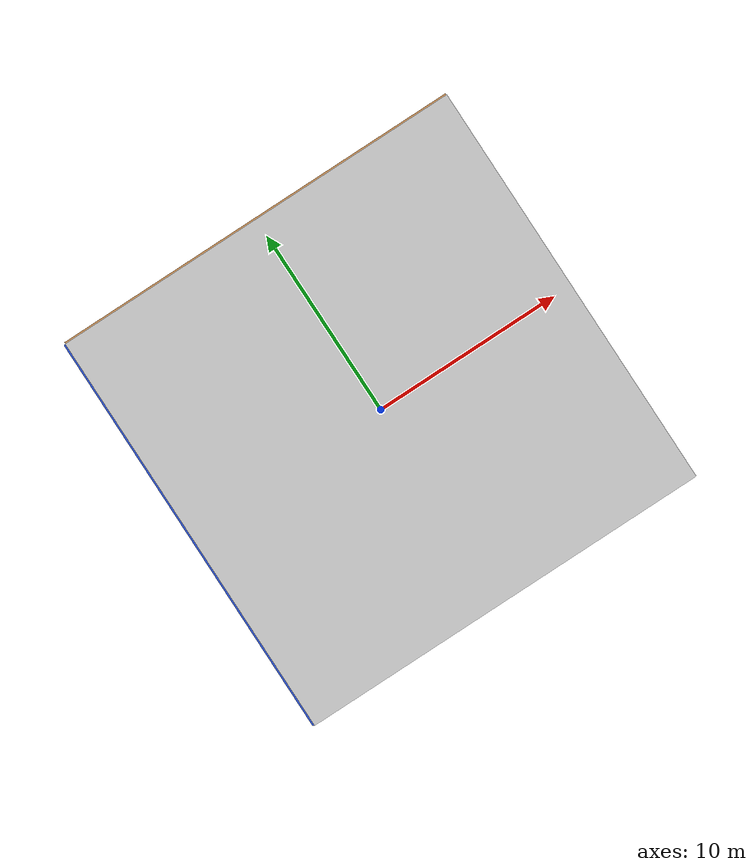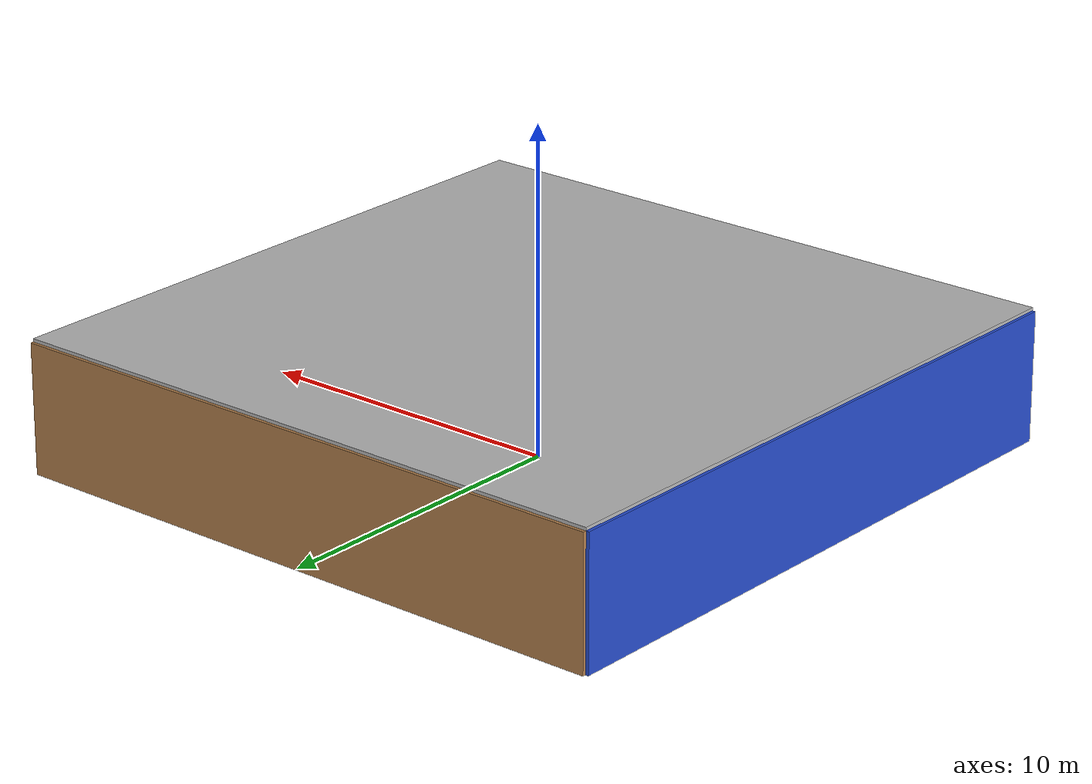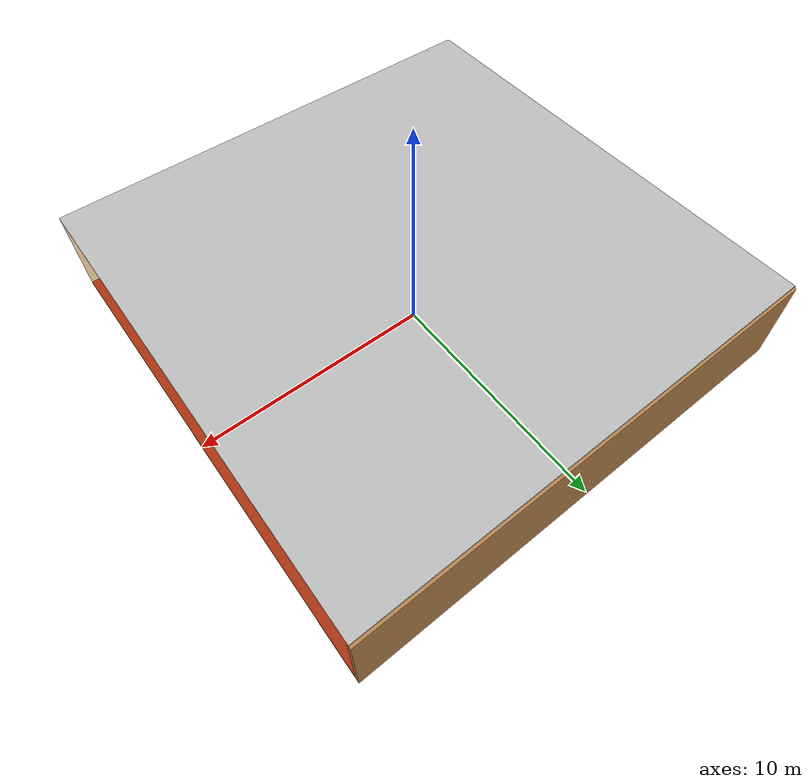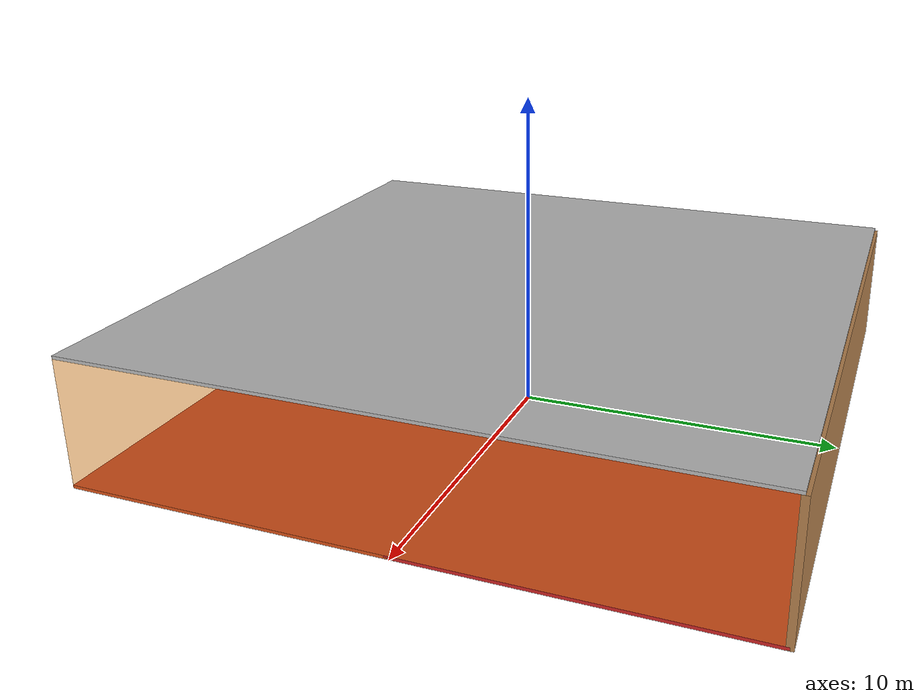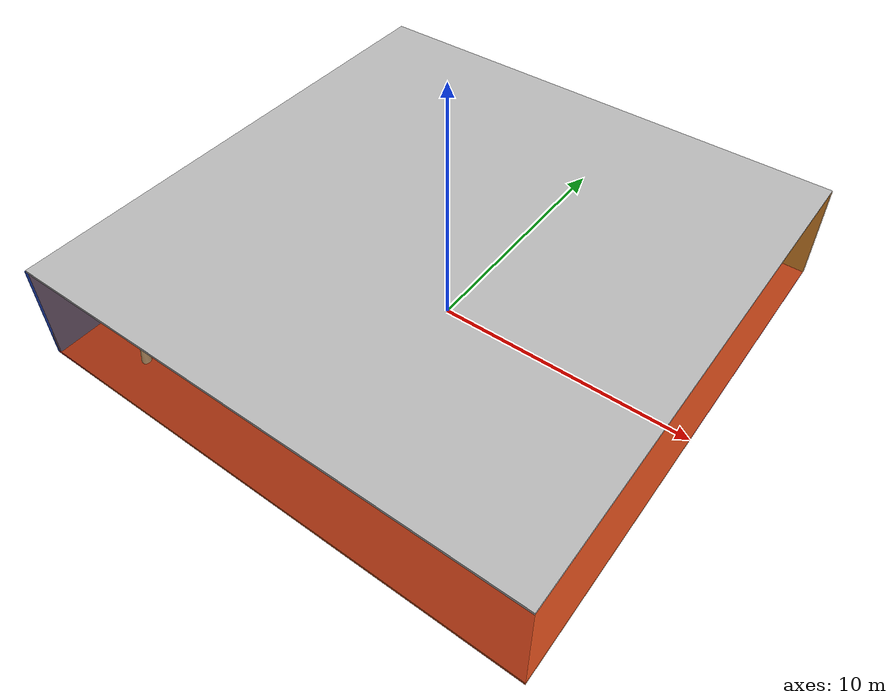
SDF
<sdf version="1.4">
 <world name="default">
  <physics type="ode">
   <max_step_size>0.001</max_step_size>
   <real_time_factor>1</real_time_factor>
   <real_time_update_rate>1000</real_time_update_rate>
   <gravity>0 0 -9.8</gravity>
  </physics>
  <scene><ambient>0.4 0.4 0.4 1</ambient><background>0.7 0.7 0.7 1</background><shadows>1</shadows></scene>
  <model name="Surrounding">
   <static>1</static>
   <link name="Ceiling">
    <collision name="Ceiling_Collision"><geometry><box><size>20 20 0.1</size></box></geometry></collision>
    <visual name="Ceiling_Visual">
     <geometry><box><size>20 20 0.1</size></box></geometry>
     <material>
      <script><uri>file://media/materials/scripts/gazebo.material</uri><name>Gazebo/PioneerBody</name></script>
     </material>
    </visual>
    <pose>0 0 4.05 0 0 0</pose>
   </link>
   <link name="Wall_South">
    <collision name="Wall_South_Collision">
     <geometry><box><size>20 0 4</size></box></geometry>
     <pose>0 0 2 0 -0 0</pose>
    </collision>
    <visual name="Wall_South_Visual">
     <pose>0 0 2 0 -0 0</pose>
     <geometry><box><size>20 0 4</size></box></geometry>
     <material>
      <script>
       <uri>file://media/materials/scripts/gazebo.material</uri>
       <name>Gazebo/OrangeTransparent</name>
      </script>
     </material>
    </visual>
    <velocity_decay><linear>0</linear><angular>0</angular></velocity_decay>
    <pose>0 -10 0 0 -0 0</pose>
   </link>
   <link name="Wall_East">
    <collision name="Wall_21_Collision">
     <geometry><box><size>20 0 4</size></box></geometry>
     <pose>0 0 2 0 -0 0</pose>
    </collision>
    <visual name="Wall_21_Visual">
     <pose>0 0 2 0 -0 0</pose>
     <geometry><box><size>20 0 4</size></box></geometry>
     <material>
      <script>
       <uri>file://media/materials/scripts/gazebo.material</uri>
       <name>Gazebo/OrangeTransparent</name>
      </script>
     </material>
    </visual>
    <velocity_decay><linear>0</linear><angular>0</angular></velocity_decay>
    <pose>10 0 0 0 -0 1.5708</pose>
   </link>
   <link name="Wall_North">
    <collision name="Wall_22_Collision">
     <geometry><box><size>20 0.2 4</size></box></geometry>
     <pose>0 0 2 0 -0 0</pose>
    </collision>
    <visual name="Wall_22_Visual">
     <pose>0 0 2 0 -0 0</pose>
     <geometry><box><size>20 0.2 4</size></box></geometry>
     <material>
      <script><uri>file://media/materials/scripts/gazebo.material</uri><name>Gazebo/WoodFloor</name></script>
     </material>
    </visual>
    <velocity_decay><linear>0</linear><angular>0</angular></velocity_decay>
    <pose>0 10 0 0 -0 0</pose>
   </link>
   <link name="Wall_West">
    <collision name="Wall_23_Collision">
     <geometry><box><size>20 0.2 4</size></box></geometry>
     <pose>0 0 2 0 -0 0</pose>
    </collision>
    <visual name="Wall_23_Visual">
     <pose>0 0 2 0 -0 0</pose>
     <geometry><box><size>20 0.2 4</size></box></geometry>
     <material>
      <script><uri>file://media/materials/scripts/gazebo.material</uri><name>Gazebo/BlueLaser</name></script>
     </material>
    </visual>
    <velocity_decay><linear>0</linear><angular>0</angular></velocity_decay>
    <pose>-10 0 0 0 0 -1.5708</pose>
   </link>
   <link name="Ground_link">
    <collision name="collision">
     <pose>0 0 .05 0 -0 0</pose>
     <geometry><box><size>20 20 0.1</size></box></geometry>
    </collision>
    <visual name="visual">
     <pose>0 0 .05 0 -0 0</pose>
     <geometry><box><size>20 20 0.1</size></box></geometry>
     <material>
      <script><uri>file://media/materials/scripts/gazebo.material</uri><name>Gazebo/RedGlow</name></script>
     </material>
    </visual>
   </link>
   <static>1</static>
  </model>
  <spherical_coordinates>
   <surface_model>EARTH_WGS84</surface_model>
   <latitude_deg>0</latitude_deg>
   <longitude_deg>0</longitude_deg>
   <elevation>0</elevation>
   <heading_deg>0</heading_deg>
  </spherical_coordinates>
  <light name="lightball_0" type="diffuse">
   <diffuse>0.8 0.8 0.8 1</diffuse>
   <specular>0.2 0.2 0.2 1</specular>
   <attenuation>
    <range>100</range>
    <constant>0.7</constant>
    <linear>0.01</linear>
    <quadratic>0.001</quadratic>
   </attenuation>
   <direction>-0.5 0.1 -0.9</direction>
   <pose>6.10915702983 2.01935232294 2.46883662608 0 0 0</pose>
  </light>
  <light name="lightball_1" type="diffuse">
   <diffuse>0.8 0.8 0.8 1</diffuse>
   <specular>0.2 0.2 0.2 1</specular>
   <attenuation>
    <range>100</range>
    <constant>0.7</constant>
    <linear>0.01</linear>
    <quadratic>0.001</quadratic>
   </attenuation>
   <direction>-0.5 0.1 -0.9</direction>
   <pose>6.66180167041 -9.64641684256 3.17376601558 0 0 0</pose>
  </light>
  <light name="lightball_2" type="diffuse">
   <diffuse>0.8 0.8 0.8 1</diffuse>
   <specular>0.2 0.2 0.2 1</specular>
   <attenuation>
    <range>100</range>
    <constant>0.7</constant>
    <linear>0.01</linear>
    <quadratic>0.001</quadratic>
   </attenuation>
   <direction>-0.5 0.1 -0.9</direction>
   <pose>2.12746370319 5.32142293227 1.35401084851 0 0 0</pose>
  </light>
  <light name="lightball_3" type="diffuse">
   <diffuse>0.8 0.8 0.8 1</diffuse>
   <specular>0.2 0.2 0.2 1</specular>
   <attenuation>
    <range>100</range>
    <constant>0.7</constant>
    <linear>0.01</linear>
    <quadratic>0.001</quadratic>
   </attenuation>
   <direction>-0.5 0.1 -0.9</direction>
   <pose>-8.89487889034 -4.64706830534 2.43619829512 0 0 0</pose>
  </light>
  <light name="lightball_4" type="diffuse">
   <diffuse>0.8 0.8 0.8 1</diffuse>
   <specular>0.2 0.2 0.2 1</specular>
   <attenuation>
    <range>100</range>
    <constant>0.7</constant>
    <linear>0.01</linear>
    <quadratic>0.001</quadratic>
   </attenuation>
   <direction>-0.5 0.1 -0.9</direction>
   <pose>-1.57363979905 4.11100973018 1.18603890972 0 0 0</pose>
  </light>
  <light name="lightball_5" type="diffuse">
   <diffuse>0.8 0.8 0.8 1</diffuse>
   <specular>0.2 0.2 0.2 1</specular>
   <attenuation>
    <range>100</range>
    <constant>0.7</constant>
    <linear>0.01</linear>
    <quadratic>0.001</quadratic>
   </attenuation>
   <direction>-0.5 0.1 -0.9</direction>
   <pose>-0.165953390232 1.43297328833 2.5678609616 0 0 0</pose>
  </light>
  <light name="lightball_6" type="diffuse">
   <diffuse>0.8 0.8 0.8 1</diffuse>
   <specular>0.2 0.2 0.2 1</specular>
   <attenuation>
    <range>100</range>
    <constant>0.7</constant>
    <linear>0.01</linear>
    <quadratic>0.001</quadratic>
   </attenuation>
   <direction>-0.5 0.1 -0.9</direction>
   <pose>-8.92944478784 -5.02154933951 2.47204045699 0 0 0</pose>
  </light>
  <light name="lightball_7" type="diffuse">
   <diffuse>0.8 0.8 0.8 1</diffuse>
   <specular>0.2 0.2 0.2 1</specular>
   <attenuation>
    <range>100</range>
    <constant>0.7</constant>
    <linear>0.01</linear>
    <quadratic>0.001</quadratic>
   </attenuation>
   <direction>-0.5 0.1 -0.9</direction>
   <pose>8.42922154701 0.216845758318 2.99907877848 0 0 0</pose>
  </light>
  <light name="lightball_8" type="diffuse">
   <diffuse>0.8 0.8 0.8 1</diffuse>
   <specular>0.2 0.2 0.2 1</specular>
   <attenuation>
    <range>100</range>
    <constant>0.7</constant>
    <linear>0.01</linear>
    <quadratic>0.001</quadratic>
   </attenuation>
   <direction>-0.5 0.1 -0.9</direction>
   <pose>6.08858437811 2.42980588786 1.43522076957 0 0 0</pose>
  </light>
  <light name="lightball_9" type="diffuse">
   <diffuse>0.8 0.8 0.8 1</diffuse>
   <specular>0.2 0.2 0.2 1</specular>
   <attenuation>
    <range>100</range>
    <constant>0.7</constant>
    <linear>0.01</linear>
    <quadratic>0.001</quadratic>
   </attenuation>
   <direction>-0.5 0.1 -0.9</direction>
   <pose>9.96109667314 -8.03073764388 1.0201122463 0 0 0</pose>
  </light>
  <light name="lightball_10" type="diffuse">
   <diffuse>0.8 0.8 0.8 1</diffuse>
   <specular>0.2 0.2 0.2 1</specular>
   <attenuation>
    <range>100</range>
    <constant>0.7</constant>
    <linear>0.01</linear>
    <quadratic>0.001</quadratic>
   </attenuation>
   <direction>-0.5 0.1 -0.9</direction>
   <pose>9.14580816216 -2.25790780901 0.935624231882 0 0 0</pose>
  </light>
  <include>
   <uri>model://construction_cone</uri>
   <pose>-7.12429515209 -8.42663095694 0 0 0 0.876836473225</pose>
  </include>
  <include><uri>model://cabinet</uri><pose>-3.35834116863 1.06532925856 0 0 0 2.84552669031</pose></include>
  <include><uri>model://table</uri><pose>-3.63855054676 4.8473937518 0 0 0 0.917526595219</pose></include>
  <include><uri>model://table</uri><pose>2.04762192143 -4.31049696299 0 0 0 2.39980829805</pose></include>
 </world>
</sdf>

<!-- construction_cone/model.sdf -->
<sdf version="1.5">
  <model name="Construction Cone">
    <link name="link">
      <collision name="collision">
        <geometry>
          <mesh>
            <scale>10 10 10</scale>
            <uri>file://isr-testbed/construction_cone/meshes/construction_cone.dae</uri>
          </mesh>
        </geometry>
      </collision>
      <visual name="visual">
        <geometry>
          <mesh>
            <scale>10 10 10</scale>
            <uri>file://isr-testbed/construction_cone/meshes/construction_cone.dae</uri>
          </mesh>
        </geometry>
      </visual>
    </link>
  </model>
</sdf>

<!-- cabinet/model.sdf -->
<sdf version="1.5">
  <model name="cabinet">
    <static>true</static>
    <link name="cabinet_bottom_plate">
      <inertial>
        <pose>0 0 -1 0 0 0</pose>
        <inertia>
          <ixx>2.050000</ixx>
          <ixy>0</ixy>
          <ixz>0</ixz>
          <iyy>2.050000</iyy>
          <iyz>0</iyz>
          <izz>2.050000</izz>
        </inertia>
        <mass>25.000000</mass>
      </inertial>
      <collision name="cabinet_bottom_plate_geom">
        <pose>0 0 0.010000 0 0 0</pose>
        <geometry>
          <box>
            <size>0.450000 0.450000 0.020000</size>
          </box>
        </geometry>
      </collision>
      <visual name="cabinet_bottom_plate_geom_visual">
        <pose>0 0 0.010000 0 0 0</pose>
        <geometry>
          <box>
            <size>0.450000 0.450000 0.020000</size>
          </box>
        </geometry>
        <material>
          <script>
            <uri>model://media/materials/scripts/gazebo.material</uri>
            <name>Gazebo/Wood</name>
          </script>
        </material>
      </visual>
      <collision name="cabinet_bottom_plate_geom_cabinet_back_plate">
        <pose>0.235000 0 0.510000 0 0 0</pose>
        <geometry>
          <box>
            <size>0.020000 0.450000 1.020000</size>
          </box>
        </geometry>
      </collision>
      <visual name="cabinet_bottom_plate_geom_cabinet_back_plate_visual">
        <pose>0.235000 0 0.510000 0 0 0</pose>
        <geometry>
          <box>
            <size>0.020000 0.450000 1.020000</size>
          </box>
        </geometry>
        <material>
          <script>
            <uri>model://media/materials/scripts/gazebo.material</uri>
            <name>Gazebo/Wood</name>
          </script>
        </material>
      </visual>
      <collision name="cabinet_bottom_plate_geom_cabinet_left_plate">
        <pose>0 0.235000 0.510000 0 0 0</pose>
        <geometry>
          <box>
            <size>0.450000 0.020000 1.020000</size>
          </box>
        </geometry>
      </collision>
      <visual name="cabinet_bottom_plate_geom_cabinet_left_plate_visual">
        <pose>0 0.235000 0.510000 0 0 0</pose>
        <geometry>
          <box>
            <size>0.450000 0.020000 1.020000</size>
          </box>
        </geometry>
        <material>
          <script>
            <uri>model://media/materials/scripts/gazebo.material</uri>
            <name>Gazebo/Wood</name>
          </script>
        </material>
      </visual>
      <collision name="cabinet_bottom_plate_geom_cabinet_middle_plate">
        <pose>0 0 0.510000 0 0 0</pose>
        <geometry>
          <box>
            <size>0.450000 0.450000 0.020000</size>
          </box>
        </geometry>
      </collision>
      <visual name="cabinet_bottom_plate_geom_cabinet_middle_plate_visual">
        <pose>0 0 0.510000 0 0 0</pose>
        <geometry>
          <box>
            <size>0.450000 0.450000 0.020000</size>
          </box>
        </geometry>
        <material>
          <script>
            <uri>model://media/materials/scripts/gazebo.material</uri>
            <name>Gazebo/Wood</name>
          </script>
        </material>
      </visual>
      <collision name="cabinet_bottom_plate_geom_cabinet_right_plate">
        <pose>0 -0.235000 0.510000 0 0 0</pose>
        <geometry>
          <box>
            <size>0.450000 0.020000 1.020000</size>
          </box>
        </geometry>
      </collision>
      <visual name="cabinet_bottom_plate_geom_cabinet_right_plate_visual">
        <pose>0 -0.235000 0.510000 0 0 0</pose>
        <geometry>
          <box>
            <size>0.450000 0.020000 1.020000</size>
          </box>
        </geometry>
        <material>
          <script>
            <uri>model://media/materials/scripts/gazebo.material</uri>
            <name>Gazebo/Wood</name>
          </script>
        </material>
      </visual>
      <collision name="cabinet_bottom_plate_geom_cabinet_top_plate">
        <pose>0 0 1.010000 0 0 0</pose>
        <geometry>
          <box>
            <size>0.450000 0.450000 0.020000</size>
          </box>
        </geometry>
      </collision>
      <visual name="cabinet_bottom_plate_geom_cabinet_top_plate_visual">
        <pose>0 0 1.010000 0 0 0</pose>
        <geometry>
          <box>
            <size>0.450000 0.450000 0.020000</size>
          </box>
        </geometry>
        <material>
          <script>
            <uri>model://media/materials/scripts/gazebo.material</uri>
            <name>Gazebo/Wood</name>
          </script>
        </material>
      </visual>
    </link>
  </model>
</sdf>

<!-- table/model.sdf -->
<sdf version="1.5">
  <model name="table">
    <static>true</static>
    <link name="link">
      <collision name="surface">
        <pose>0 0 1.0 0 0 0</pose>
        <geometry>
          <box>
            <size>1.5 0.8 0.03</size>
          </box>
        </geometry>
        <surface>
          <friction>
            <ode>
              <mu>0.6</mu>
              <mu2>0.6</mu2>
            </ode>
          </friction>
        </surface>
      </collision>
      <visual name="visual1">
        <pose>0 0 1.0 0 0 0</pose>
        <geometry>
          <box>
            <size>1.5 0.8 0.03</size>
          </box>
        </geometry>
        <material>
          <script>
            <uri>model://media/materials/scripts/gazebo.material</uri>
            <name>Gazebo/Wood</name>
          </script>
        </material>
      </visual>
      <collision name="front_left_leg">
        <pose>0.68 0.38 0.5 0 0 0</pose>
        <geometry>
          <cylinder>
            <radius>0.02</radius>
            <length>1.0</length>
          </cylinder>
        </geometry>
      </collision>
      <visual name="front_left_leg">
        <pose>0.68 0.38 0.5 0 0 0</pose>
        <geometry>
          <cylinder>
            <radius>0.02</radius>
            <length>1.0</length>
          </cylinder>
        </geometry>
        <material>
          <script>
            <uri>model://media/materials/scripts/gazebo.material</uri>
            <name>Gazebo/Grey</name>
          </script>
        </material>
      </visual>
      <collision name="front_right_leg">
        <pose>0.68 -0.38 0.5 0 0 0</pose>
        <geometry>
          <cylinder>
            <radius>0.02</radius>
            <length>1.0</length>
          </cylinder>
        </geometry>
      </collision>
      <visual name="front_right_leg">
        <pose>0.68 -0.38 0.5 0 0 0</pose>
        <geometry>
          <cylinder>
            <radius>0.02</radius>
            <length>1.0</length>
          </cylinder>
        </geometry>
        <material>
          <script>
            <uri>model://media/materials/scripts/gazebo.material</uri>
            <name>Gazebo/Grey</name>
          </script>
        </material>
      </visual>
      <collision name="back_right_leg">
        <pose>-0.68 -0.38 0.5 0 0 0</pose>
        <geometry>
          <cylinder>
            <radius>0.02</radius>
            <length>1.0</length>
          </cylinder>
        </geometry>
      </collision>
      <visual name="back_right_leg">
        <pose>-0.68 -0.38 0.5 0 0 0</pose>
        <geometry>
          <cylinder>
            <radius>0.02</radius>
            <length>1.0</length>
          </cylinder>
        </geometry>
        <material>
          <script>
            <uri>model://media/materials/scripts/gazebo.material</uri>
            <name>Gazebo/Grey</name>
          </script>
        </material>
      </visual>
      <collision name="back_left_leg">
        <pose>-0.68 0.38 0.5 0 0 0</pose>
        <geometry>
          <cylinder>
            <radius>0.02</radius>
            <length>1.0</length>
          </cylinder>
        </geometry>
      </collision>
      <visual name="back_left_leg">
        <pose>-0.68 0.38 0.5 0 0 0</pose>
        <geometry>
          <cylinder>
            <radius>0.02</radius>
            <length>1.0</length>
          </cylinder>
        </geometry>
        <material>
          <script>
            <uri>model://media/materials/scripts/gazebo.material</uri>
            <name>Gazebo/Grey</name>
          </script>
        </material>
      </visual>
    </link>
  </model>
</sdf>
